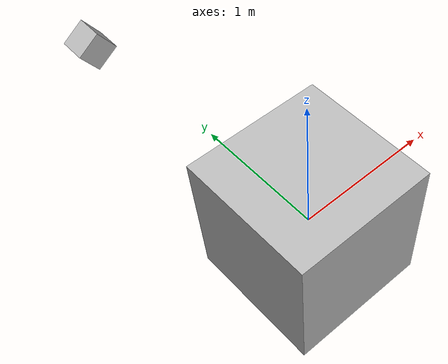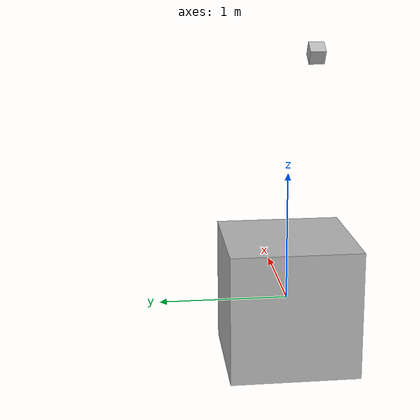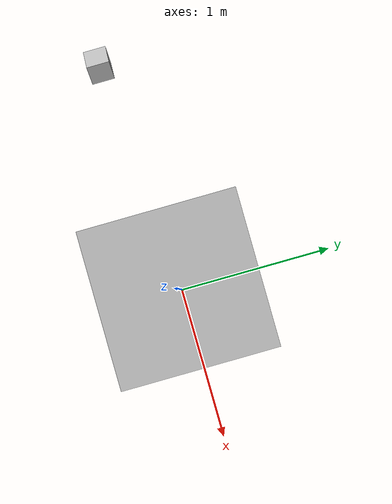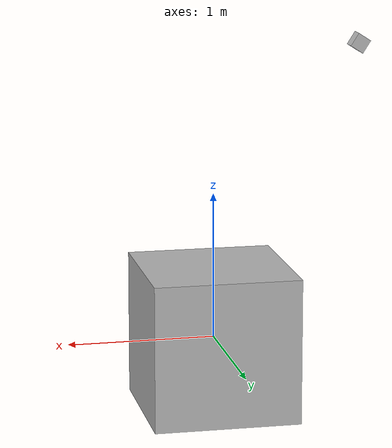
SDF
<?xml version="1.0"?>
<sdf version='1.6'>
  <world name='default'>
    <model name='unit_box'>
      <pose>0 0 0 0 0 0</pose>
      <link name='link'>
	<static>true</static>
        <visual name='visual'>
          <geometry>
            <box>
              <size>1 1 1</size>
            </box>
          </geometry>
        </visual>
      </link>
    </model>
    <light name='user_directional_light_0' type='directional'>
      <pose>0 0 1 0 0 0</pose>
    </light>
    <model name='camera'>
      <static>true</static>
      <pose>-1 0 2 0 1 0</pose>
      <link name='link'>
        <visual name='visual'>
          <geometry>
            <box>
              <size>0.1 0.1 0.1</size>
            </box>
          </geometry>
        </visual>
        <sensor name='my_camera' type='camera'>
          <camera>
            <save enabled="true">
		    <path>/home/user/ta_ws/scr/quad_sim/camera_sensor</path>
            </save>
            <horizontal_fov>1.047</horizontal_fov>
            <image>
              <width>1920</width>
              <height>1080</height>
            </image>
            <clip>
              <near>0.1</near>
              <far>100</far>
            </clip>
          </camera>
	  <plugin name="camera_controller" filename="libgazebo_ros_camera.so">
		  <cameraName>camera1</cameraName>
		  <imageTopicName>image_raw</imageTopicName>
		  <cameraInfoTopicName>camera_infO</cameraInfoTopicName>
		  <frameName>cam_link</frameName>
	  </plugin>
          <always_on>1</always_on>
          <update_rate>40</update_rate>
          <visualize>true></visualize>
        </sensor>
      </link>
    </model>
  </world>
</sdf>
